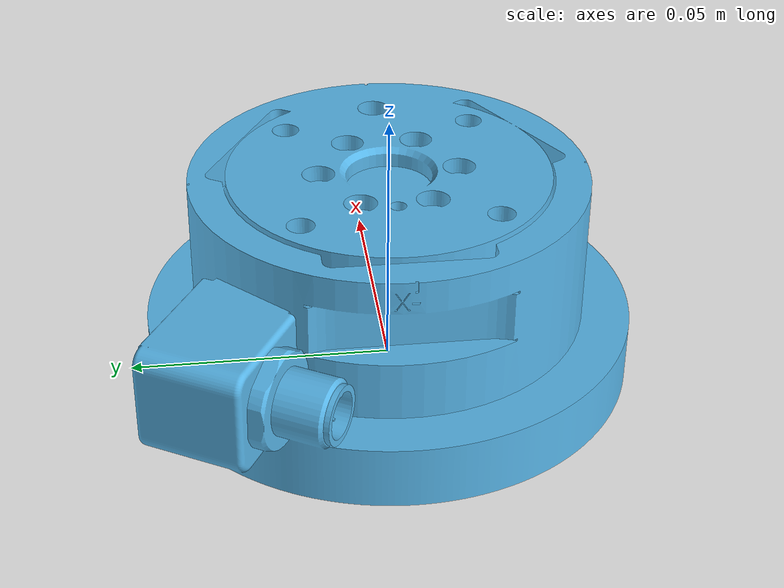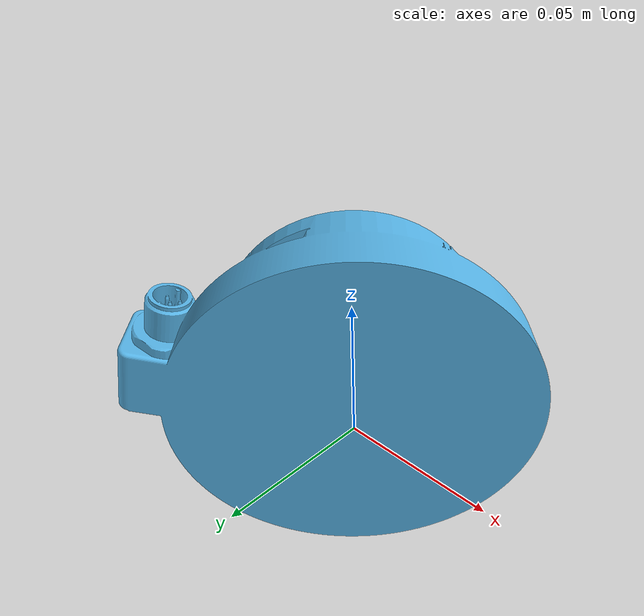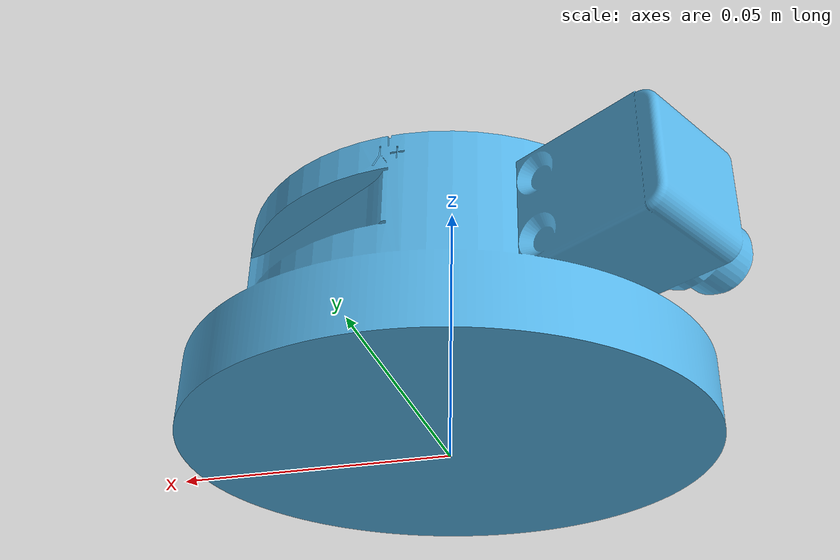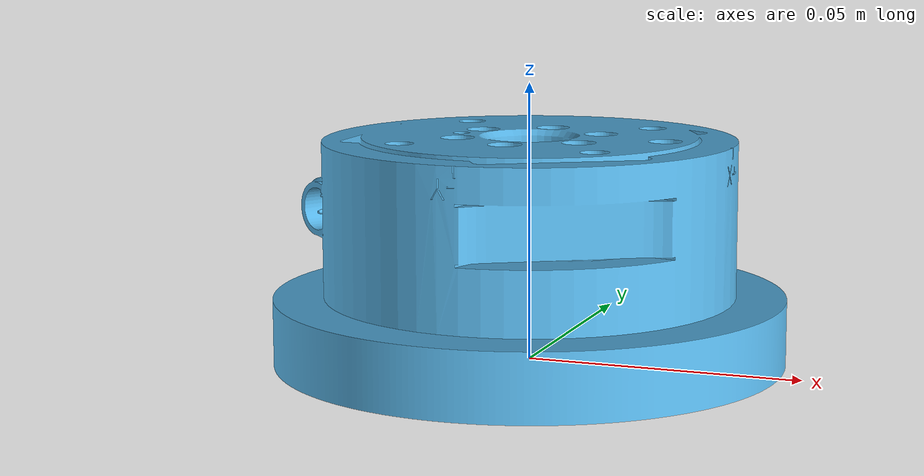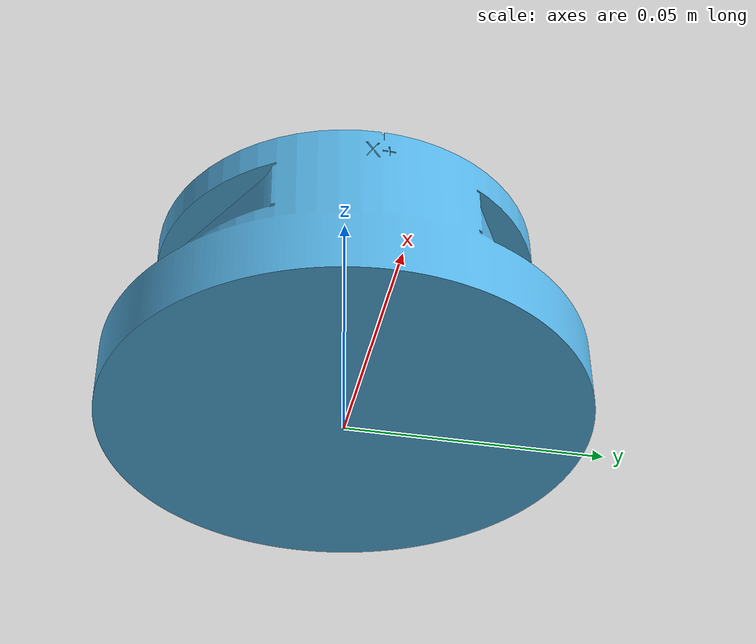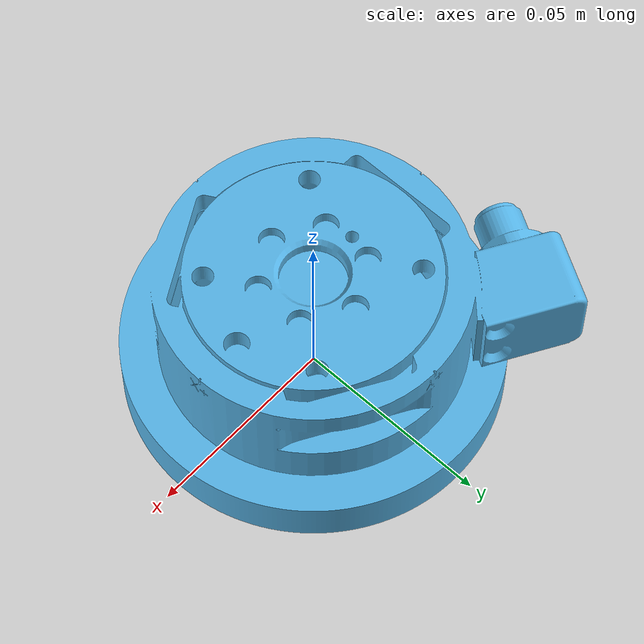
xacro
<?xml version="1.0"?>

<robot name="ati" xmlns:xacro="http://www.ros.org/wiki/xacro">

  <!-- Import Rviz colors -->
  <xacro:include filename="$(find ati_description)/urdf/ati.xacro" />

  <xacro:arg name="coordinate_frame" default="world"/>
  <link name="world">
  </link>

  <!--ati-->
  <xacro:ati parent="$(arg coordinate_frame)">
  </xacro:ati>

</robot>

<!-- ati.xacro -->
<robot xmlns:xacro="http://www.ros.org/wiki/xacro">

  <xacro:macro name="ati" params="parent">

    <!--joint between parent} and ati-->
    <joint name="${parent}_ati" type="fixed">
      <origin xyz="0.0 0.0 0.0406" rpy="0 0 0"/>
      <parent link="${parent}"/>
      <child link="ati"/>
    </joint>

    <link name="ati">
      <inertial>
        <origin xyz="0 0.0 0" rpy="0 0 0"/>
        <mass value="0.255"/>
        <inertia ixx="0.01"  ixy="0"  ixz="0" iyy="0.01" iyz="0.00" izz="0.01" />
      </inertial>

      <visual>
        <origin xyz="0 0 0" rpy="0 0 0"/>
        <geometry>
          <mesh filename="package://ati_description/meshes/ati-gamma.dae"/>
        </geometry>
      </visual>

      <collision>
        <origin xyz="0 0 0.0" rpy="0 0 0"/>
        <geometry>
          <mesh filename="package://ati_description/meshes/ati-gamma.dae"/>
        </geometry>
      </collision>

    </link>

  </xacro:macro>

</robot>
